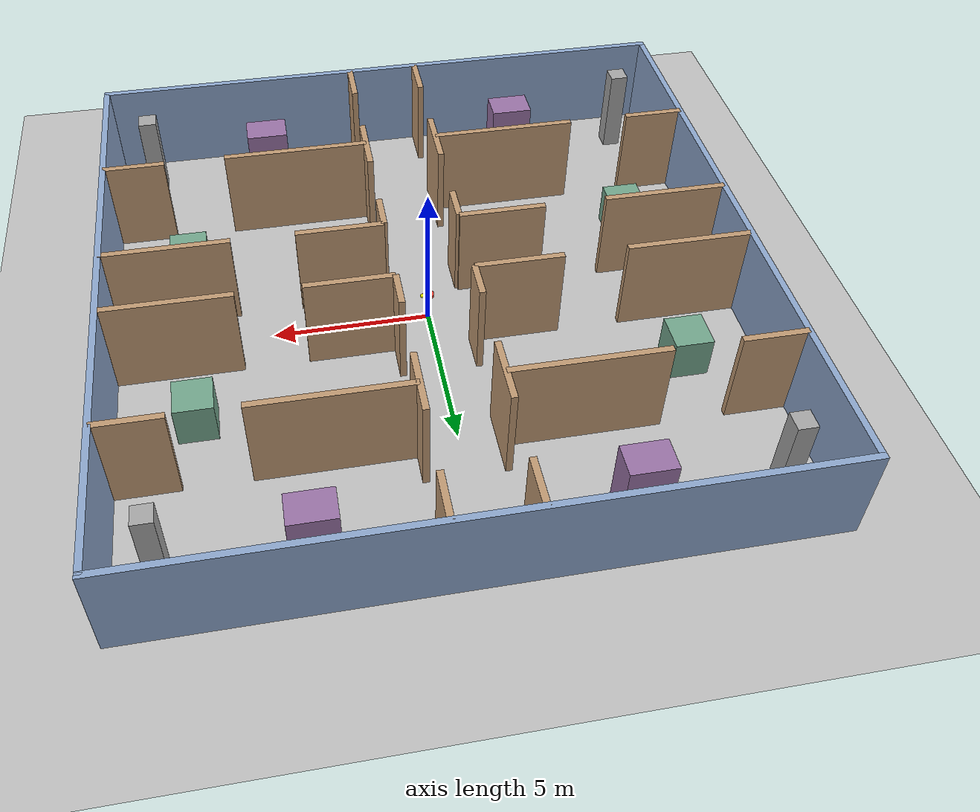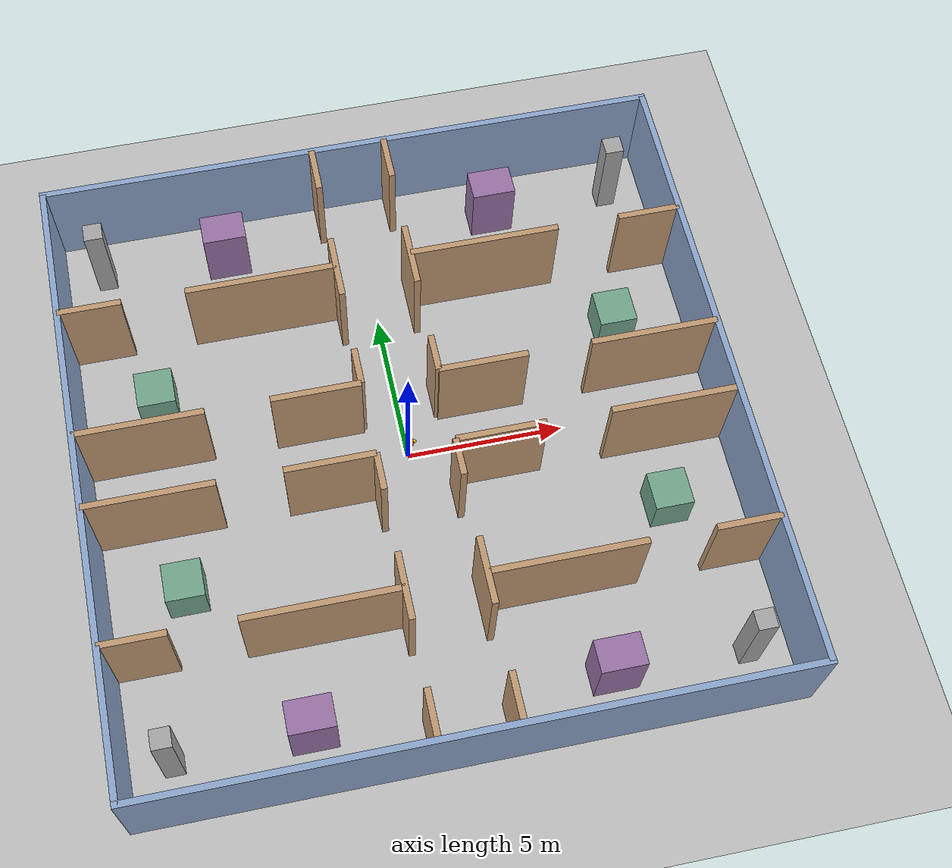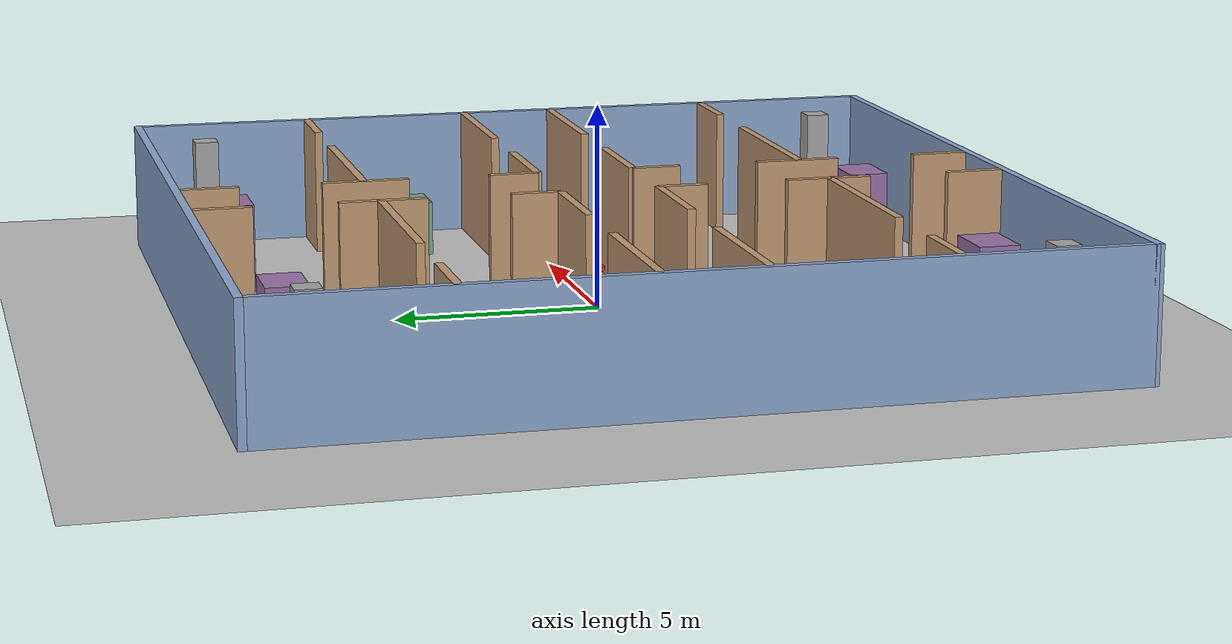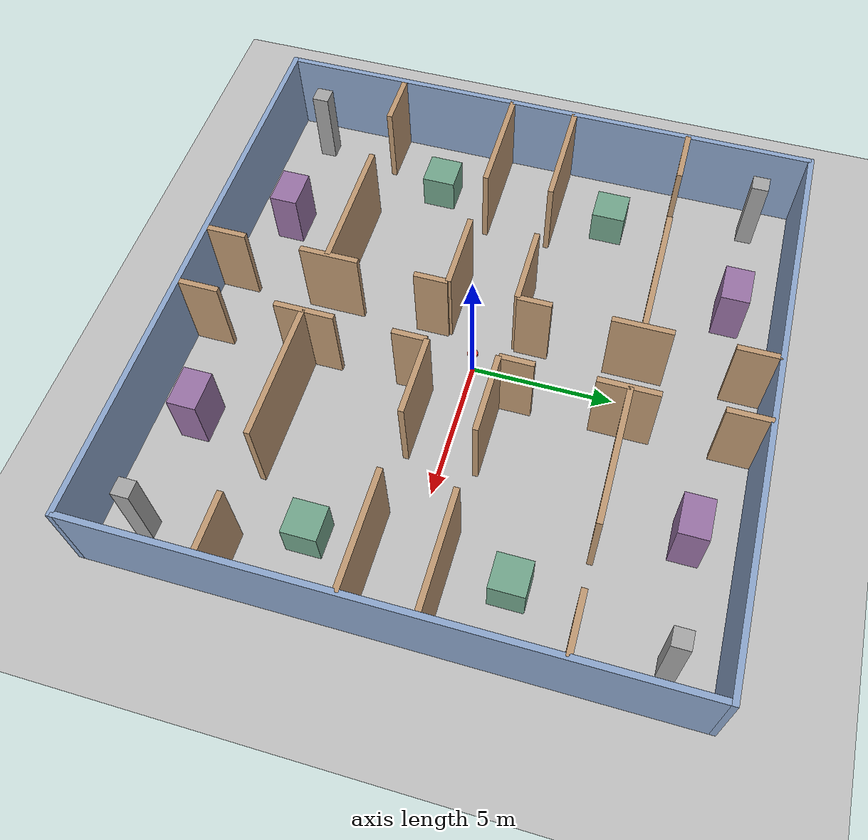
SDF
<?xml version='1.0' encoding='utf-8'?>
<sdf version="1.6">
  <world name="fuel_complex">
    <gravity>0 0 -9.81</gravity>
    <physics type="ode">
      <max_step_size>0.002</max_step_size>
      <real_time_update_rate>500</real_time_update_rate>
    </physics>
    <scene>
      <ambient>0.6 0.6 0.6 1</ambient>
      <background>0.8 0.85 0.9 1</background>
    </scene>
    <light name="sun" type="directional">
      <pose>0 0 10 0 0 0</pose>
      <diffuse>0.8 0.8 0.8 1</diffuse>
      <direction>-0.2 -0.4 -1</direction>
    </light>
    <model name="ground">
      <static>true</static>
      <link name="ground">
        <collision name="collision">
          <geometry>
            <plane>
              <normal>0 0 1</normal>
              <size>30 30</size>
            </plane>
          </geometry>
        </collision>
        <visual name="visual">
          <geometry>
            <plane>
              <normal>0 0 1</normal>
              <size>30 30</size>
            </plane>
          </geometry>
          <material>
            <ambient>0.75 0.75 0.75 1</ambient>
          </material>
        </visual>
      </link>
    </model>
    <model name="fuel_drone">
      <pose>0 0 1 0 0 0</pose>
      <link name="body">
        <inertial>
          <mass>0.98</mass>
          <inertia>
            <ixx>0.015</ixx>
            <iyy>0.015</iyy>
            <izz>0.025</izz>
          </inertia>
        </inertial>
        <collision name="collision">
          <geometry>
            <cylinder>
              <radius>0.18</radius>
              <length>0.10</length>
            </cylinder>
          </geometry>
        </collision>
        <visual name="visual">
          <geometry>
            <cylinder>
              <radius>0.18</radius>
              <length>0.10</length>
            </cylinder>
          </geometry>
          <material>
            <ambient>0.9 0.2 0.15 1</ambient>
          </material>
        </visual>
        <visual name="front">
          <pose>0.2 0 0 0 0 0</pose>
          <geometry>
            <sphere>
              <radius>0.06</radius>
            </sphere>
          </geometry>
          <material>
            <ambient>1 1 0 1</ambient>
          </material>
        </visual>
        <sensor name="front_depth" type="depth">
          <always_on>true</always_on>
          <update_rate>15</update_rate>
          <pose>0 0 0 0 0 0</pose>
          <camera>
            <horizontal_fov>1.3962634</horizontal_fov>
            <image>
              <width>640</width>
              <height>480</height>
              <format>R8G8B8</format>
            </image>
            <clip>
              <near>0.2</near>
              <far>5.0</far>
            </clip>
          </camera>
          <plugin name="depth_ros" filename="libgazebo_ros_depth_camera.so">
            <robotNamespace>/gazebo_fuel</robotNamespace>
            <cameraName>camera</cameraName>
            <depthImageTopicName>depth/image_raw</depthImageTopicName>
            <depthImageCameraInfoTopicName>depth/camera_info</depthImageCameraInfoTopicName>
            <imageTopicName>image_raw</imageTopicName>
            <cameraInfoTopicName>camera_info</cameraInfoTopicName>
            <pointCloudTopicName>points</pointCloudTopicName>
            <frameName>camera_optical</frameName>
            <updateRate>0</updateRate>
            <pointCloudCutoff>0.2</pointCloudCutoff>
          </plugin>
        </sensor>
        <sensor name="front_lidar" type="ray">
          <pose>0 0 0.15 0 0 0</pose>
          <always_on>true</always_on>
          <update_rate>10</update_rate>
          <visualize>false</visualize>
          <ray>
            <scan>
              <horizontal>
                <samples>240</samples>
                <resolution>1</resolution>
                <min_angle>-1.04719755</min_angle>
                <max_angle>1.04719755</max_angle>
              </horizontal>
              <vertical>
                <samples>32</samples>
                <resolution>1</resolution>
                <min_angle>-0.52359878</min_angle>
                <max_angle>0.52359878</max_angle>
              </vertical>
            </scan>
            <range>
              <min>0.2</min>
              <max>8.0</max>
              <resolution>0.01</resolution>
            </range>
          </ray>
          <plugin name="lidar_ros" filename="libgazebo_ros_block_laser.so">
            <robotNamespace>/gazebo_fuel</robotNamespace>
            <topicName>lidar/points_raw</topicName>
            <frameName>lidar_link</frameName>
            <gaussianNoise>0.0</gaussianNoise>
            <hokuyoMinIntensity>0.0</hokuyoMinIntensity>
            <updateRate>0</updateRate>
          </plugin>
        </sensor>
      </link>
      <plugin name="fuel_controller" filename="libfuel_gazebo_controller.so" />
    </model>
    <model name="outer_north">
      <static>true</static>
      <pose>0 10 1.6 0 0 0</pose>
      <link name="body">
        <collision name="collision">
          <geometry>
            <box>
              <size>20.2 0.2 3.2</size>
            </box>
          </geometry>
        </collision>
        <visual name="visual">
          <geometry>
            <box>
              <size>20.2 0.2 3.2</size>
            </box>
          </geometry>
          <material>
            <ambient>0.55 0.65 0.80 1</ambient>
            <diffuse>0.55 0.65 0.80 1</diffuse>
          </material>
        </visual>
      </link>
    </model>
    <model name="outer_south">
      <static>true</static>
      <pose>0 -10 1.6 0 0 0</pose>
      <link name="body">
        <collision name="collision">
          <geometry>
            <box>
              <size>20.2 0.2 3.2</size>
            </box>
          </geometry>
        </collision>
        <visual name="visual">
          <geometry>
            <box>
              <size>20.2 0.2 3.2</size>
            </box>
          </geometry>
          <material>
            <ambient>0.55 0.65 0.80 1</ambient>
            <diffuse>0.55 0.65 0.80 1</diffuse>
          </material>
        </visual>
      </link>
    </model>
    <model name="outer_east">
      <static>true</static>
      <pose>10 0 1.6 0 0 0</pose>
      <link name="body">
        <collision name="collision">
          <geometry>
            <box>
              <size>0.2 20 3.2</size>
            </box>
          </geometry>
        </collision>
        <visual name="visual">
          <geometry>
            <box>
              <size>0.2 20 3.2</size>
            </box>
          </geometry>
          <material>
            <ambient>0.55 0.65 0.80 1</ambient>
            <diffuse>0.55 0.65 0.80 1</diffuse>
          </material>
        </visual>
      </link>
    </model>
    <model name="outer_west">
      <static>true</static>
      <pose>-10 0 1.6 0 0 0</pose>
      <link name="body">
        <collision name="collision">
          <geometry>
            <box>
              <size>0.2 20 3.2</size>
            </box>
          </geometry>
        </collision>
        <visual name="visual">
          <geometry>
            <box>
              <size>0.2 20 3.2</size>
            </box>
          </geometry>
          <material>
            <ambient>0.55 0.65 0.80 1</ambient>
            <diffuse>0.55 0.65 0.80 1</diffuse>
          </material>
        </visual>
      </link>
    </model>
    <model name="corridor_side_-1_-1_0">
      <static>true</static>
      <pose>-1.2 -1.7999999999999998 1.6 0 0 0</pose>
      <link name="body">
        <collision name="collision">
          <geometry>
            <box>
              <size>0.2 1.2 3.2</size>
            </box>
          </geometry>
        </collision>
        <visual name="visual">
          <geometry>
            <box>
              <size>0.2 1.2 3.2</size>
            </box>
          </geometry>
          <material>
            <ambient>0.75 0.60 0.45 1</ambient>
            <diffuse>0.75 0.60 0.45 1</diffuse>
          </material>
        </visual>
      </link>
    </model>
    <model name="corridor_side_-1_-1_1">
      <static>true</static>
      <pose>-1.2 -5.45 1.6 0 0 0</pose>
      <link name="body">
        <collision name="collision">
          <geometry>
            <box>
              <size>0.2 2.0999999999999996 3.2</size>
            </box>
          </geometry>
        </collision>
        <visual name="visual">
          <geometry>
            <box>
              <size>0.2 2.0999999999999996 3.2</size>
            </box>
          </geometry>
          <material>
            <ambient>0.75 0.60 0.45 1</ambient>
            <diffuse>0.75 0.60 0.45 1</diffuse>
          </material>
        </visual>
      </link>
    </model>
    <model name="corridor_side_-1_-1_2">
      <static>true</static>
      <pose>-1.2 -9.25 1.6 0 0 0</pose>
      <link name="body">
        <collision name="collision">
          <geometry>
            <box>
              <size>0.2 1.5 3.2</size>
            </box>
          </geometry>
        </collision>
        <visual name="visual">
          <geometry>
            <box>
              <size>0.2 1.5 3.2</size>
            </box>
          </geometry>
          <material>
            <ambient>0.75 0.60 0.45 1</ambient>
            <diffuse>0.75 0.60 0.45 1</diffuse>
          </material>
        </visual>
      </link>
    </model>
    <model name="cross_side_-1_-1_0">
      <static>true</static>
      <pose>-2.6 -1.2 1.6 0 0 0</pose>
      <link name="body">
        <collision name="collision">
          <geometry>
            <box>
              <size>2.8 0.2 3.2</size>
            </box>
          </geometry>
        </collision>
        <visual name="visual">
          <geometry>
            <box>
              <size>2.8 0.2 3.2</size>
            </box>
          </geometry>
          <material>
            <ambient>0.75 0.60 0.45 1</ambient>
            <diffuse>0.75 0.60 0.45 1</diffuse>
          </material>
        </visual>
      </link>
    </model>
    <model name="cross_side_-1_-1_1">
      <static>true</static>
      <pose>-8.0 -1.2 1.6 0 0 0</pose>
      <link name="body">
        <collision name="collision">
          <geometry>
            <box>
              <size>4 0.2 3.2</size>
            </box>
          </geometry>
        </collision>
        <visual name="visual">
          <geometry>
            <box>
              <size>4 0.2 3.2</size>
            </box>
          </geometry>
          <material>
            <ambient>0.75 0.60 0.45 1</ambient>
            <diffuse>0.75 0.60 0.45 1</diffuse>
          </material>
        </visual>
      </link>
    </model>
    <model name="room_divider_-1_-1_0">
      <static>true</static>
      <pose>-3.6 -5.5 1.6 0 0 0</pose>
      <link name="body">
        <collision name="collision">
          <geometry>
            <box>
              <size>4.8 0.2 3.2</size>
            </box>
          </geometry>
        </collision>
        <visual name="visual">
          <geometry>
            <box>
              <size>4.8 0.2 3.2</size>
            </box>
          </geometry>
          <material>
            <ambient>0.75 0.60 0.45 1</ambient>
            <diffuse>0.75 0.60 0.45 1</diffuse>
          </material>
        </visual>
      </link>
    </model>
    <model name="room_divider_-1_-1_1">
      <static>true</static>
      <pose>-9.0 -5.5 1.6 0 0 0</pose>
      <link name="body">
        <collision name="collision">
          <geometry>
            <box>
              <size>2 0.2 3.2</size>
            </box>
          </geometry>
        </collision>
        <visual name="visual">
          <geometry>
            <box>
              <size>2 0.2 3.2</size>
            </box>
          </geometry>
          <material>
            <ambient>0.75 0.60 0.45 1</ambient>
            <diffuse>0.75 0.60 0.45 1</diffuse>
          </material>
        </visual>
      </link>
    </model>
    <model name="crate_inner_-1_-1">
      <static>true</static>
      <pose>-7.5 -3.3 0.7 0 0 0</pose>
      <link name="body">
        <collision name="collision">
          <geometry>
            <box>
              <size>1.2 1.2 1.4</size>
            </box>
          </geometry>
        </collision>
        <visual name="visual">
          <geometry>
            <box>
              <size>1.2 1.2 1.4</size>
            </box>
          </geometry>
          <material>
            <ambient>0.45 0.65 0.55 1</ambient>
            <diffuse>0.45 0.65 0.55 1</diffuse>
          </material>
        </visual>
      </link>
    </model>
    <model name="crate_outer_-1_-1">
      <static>true</static>
      <pose>-4.5 -8.3 1.1 0 0 0</pose>
      <link name="body">
        <collision name="collision">
          <geometry>
            <box>
              <size>1.4 1.0 2.2</size>
            </box>
          </geometry>
        </collision>
        <visual name="visual">
          <geometry>
            <box>
              <size>1.4 1.0 2.2</size>
            </box>
          </geometry>
          <material>
            <ambient>0.60 0.45 0.65 1</ambient>
            <diffuse>0.60 0.45 0.65 1</diffuse>
          </material>
        </visual>
      </link>
    </model>
    <model name="column_-1_-1">
      <static>true</static>
      <pose>-8.6 -8.4 1.5 0 0 0</pose>
      <link name="body">
        <collision name="collision">
          <geometry>
            <box>
              <size>0.6 0.6 3.0</size>
            </box>
          </geometry>
        </collision>
        <visual name="visual">
          <geometry>
            <box>
              <size>0.6 0.6 3.0</size>
            </box>
          </geometry>
          <material>
            <ambient>0.65 0.65 0.65 1</ambient>
            <diffuse>0.65 0.65 0.65 1</diffuse>
          </material>
        </visual>
      </link>
    </model>
    <model name="corridor_side_-1_1_0">
      <static>true</static>
      <pose>-1.2 1.7999999999999998 1.6 0 0 0</pose>
      <link name="body">
        <collision name="collision">
          <geometry>
            <box>
              <size>0.2 1.2 3.2</size>
            </box>
          </geometry>
        </collision>
        <visual name="visual">
          <geometry>
            <box>
              <size>0.2 1.2 3.2</size>
            </box>
          </geometry>
          <material>
            <ambient>0.75 0.60 0.45 1</ambient>
            <diffuse>0.75 0.60 0.45 1</diffuse>
          </material>
        </visual>
      </link>
    </model>
    <model name="corridor_side_-1_1_1">
      <static>true</static>
      <pose>-1.2 5.45 1.6 0 0 0</pose>
      <link name="body">
        <collision name="collision">
          <geometry>
            <box>
              <size>0.2 2.0999999999999996 3.2</size>
            </box>
          </geometry>
        </collision>
        <visual name="visual">
          <geometry>
            <box>
              <size>0.2 2.0999999999999996 3.2</size>
            </box>
          </geometry>
          <material>
            <ambient>0.75 0.60 0.45 1</ambient>
            <diffuse>0.75 0.60 0.45 1</diffuse>
          </material>
        </visual>
      </link>
    </model>
    <model name="corridor_side_-1_1_2">
      <static>true</static>
      <pose>-1.2 9.25 1.6 0 0 0</pose>
      <link name="body">
        <collision name="collision">
          <geometry>
            <box>
              <size>0.2 1.5 3.2</size>
            </box>
          </geometry>
        </collision>
        <visual name="visual">
          <geometry>
            <box>
              <size>0.2 1.5 3.2</size>
            </box>
          </geometry>
          <material>
            <ambient>0.75 0.60 0.45 1</ambient>
            <diffuse>0.75 0.60 0.45 1</diffuse>
          </material>
        </visual>
      </link>
    </model>
    <model name="cross_side_-1_1_0">
      <static>true</static>
      <pose>-2.6 1.2 1.6 0 0 0</pose>
      <link name="body">
        <collision name="collision">
          <geometry>
            <box>
              <size>2.8 0.2 3.2</size>
            </box>
          </geometry>
        </collision>
        <visual name="visual">
          <geometry>
            <box>
              <size>2.8 0.2 3.2</size>
            </box>
          </geometry>
          <material>
            <ambient>0.75 0.60 0.45 1</ambient>
            <diffuse>0.75 0.60 0.45 1</diffuse>
          </material>
        </visual>
      </link>
    </model>
    <model name="cross_side_-1_1_1">
      <static>true</static>
      <pose>-8.0 1.2 1.6 0 0 0</pose>
      <link name="body">
        <collision name="collision">
          <geometry>
            <box>
              <size>4 0.2 3.2</size>
            </box>
          </geometry>
        </collision>
        <visual name="visual">
          <geometry>
            <box>
              <size>4 0.2 3.2</size>
            </box>
          </geometry>
          <material>
            <ambient>0.75 0.60 0.45 1</ambient>
            <diffuse>0.75 0.60 0.45 1</diffuse>
          </material>
        </visual>
      </link>
    </model>
    <model name="room_divider_-1_1_0">
      <static>true</static>
      <pose>-3.6 5.5 1.6 0 0 0</pose>
      <link name="body">
        <collision name="collision">
          <geometry>
            <box>
              <size>4.8 0.2 3.2</size>
            </box>
          </geometry>
        </collision>
        <visual name="visual">
          <geometry>
            <box>
              <size>4.8 0.2 3.2</size>
            </box>
          </geometry>
          <material>
            <ambient>0.75 0.60 0.45 1</ambient>
            <diffuse>0.75 0.60 0.45 1</diffuse>
          </material>
        </visual>
      </link>
    </model>
    <model name="room_divider_-1_1_1">
      <static>true</static>
      <pose>-9.0 5.5 1.6 0 0 0</pose>
      <link name="body">
        <collision name="collision">
          <geometry>
            <box>
              <size>2 0.2 3.2</size>
            </box>
          </geometry>
        </collision>
        <visual name="visual">
          <geometry>
            <box>
              <size>2 0.2 3.2</size>
            </box>
          </geometry>
          <material>
            <ambient>0.75 0.60 0.45 1</ambient>
            <diffuse>0.75 0.60 0.45 1</diffuse>
          </material>
        </visual>
      </link>
    </model>
    <model name="crate_inner_-1_1">
      <static>true</static>
      <pose>-7.5 3.3 0.7 0 0 0</pose>
      <link name="body">
        <collision name="collision">
          <geometry>
            <box>
              <size>1.2 1.2 1.4</size>
            </box>
          </geometry>
        </collision>
        <visual name="visual">
          <geometry>
            <box>
              <size>1.2 1.2 1.4</size>
            </box>
          </geometry>
          <material>
            <ambient>0.45 0.65 0.55 1</ambient>
            <diffuse>0.45 0.65 0.55 1</diffuse>
          </material>
        </visual>
      </link>
    </model>
    <model name="crate_outer_-1_1">
      <static>true</static>
      <pose>-4.5 8.3 1.1 0 0 0</pose>
      <link name="body">
        <collision name="collision">
          <geometry>
            <box>
              <size>1.4 1.0 2.2</size>
            </box>
          </geometry>
        </collision>
        <visual name="visual">
          <geometry>
            <box>
              <size>1.4 1.0 2.2</size>
            </box>
          </geometry>
          <material>
            <ambient>0.60 0.45 0.65 1</ambient>
            <diffuse>0.60 0.45 0.65 1</diffuse>
          </material>
        </visual>
      </link>
    </model>
    <model name="column_-1_1">
      <static>true</static>
      <pose>-8.6 8.4 1.5 0 0 0</pose>
      <link name="body">
        <collision name="collision">
          <geometry>
            <box>
              <size>0.6 0.6 3.0</size>
            </box>
          </geometry>
        </collision>
        <visual name="visual">
          <geometry>
            <box>
              <size>0.6 0.6 3.0</size>
            </box>
          </geometry>
          <material>
            <ambient>0.65 0.65 0.65 1</ambient>
            <diffuse>0.65 0.65 0.65 1</diffuse>
          </material>
        </visual>
      </link>
    </model>
    <model name="corridor_side_1_-1_0">
      <static>true</static>
      <pose>1.2 -1.7999999999999998 1.6 0 0 0</pose>
      <link name="body">
        <collision name="collision">
          <geometry>
            <box>
              <size>0.2 1.2 3.2</size>
            </box>
          </geometry>
        </collision>
        <visual name="visual">
          <geometry>
            <box>
              <size>0.2 1.2 3.2</size>
            </box>
          </geometry>
          <material>
            <ambient>0.75 0.60 0.45 1</ambient>
            <diffuse>0.75 0.60 0.45 1</diffuse>
          </material>
        </visual>
      </link>
    </model>
    <model name="corridor_side_1_-1_1">
      <static>true</static>
      <pose>1.2 -5.45 1.6 0 0 0</pose>
      <link name="body">
        <collision name="collision">
          <geometry>
            <box>
              <size>0.2 2.0999999999999996 3.2</size>
            </box>
          </geometry>
        </collision>
        <visual name="visual">
          <geometry>
            <box>
              <size>0.2 2.0999999999999996 3.2</size>
            </box>
          </geometry>
          <material>
            <ambient>0.75 0.60 0.45 1</ambient>
            <diffuse>0.75 0.60 0.45 1</diffuse>
          </material>
        </visual>
      </link>
    </model>
    <model name="corridor_side_1_-1_2">
      <static>true</static>
      <pose>1.2 -9.25 1.6 0 0 0</pose>
      <link name="body">
        <collision name="collision">
          <geometry>
            <box>
              <size>0.2 1.5 3.2</size>
            </box>
          </geometry>
        </collision>
        <visual name="visual">
          <geometry>
            <box>
              <size>0.2 1.5 3.2</size>
            </box>
          </geometry>
          <material>
            <ambient>0.75 0.60 0.45 1</ambient>
            <diffuse>0.75 0.60 0.45 1</diffuse>
          </material>
        </visual>
      </link>
    </model>
    <model name="cross_side_1_-1_0">
      <static>true</static>
      <pose>2.6 -1.2 1.6 0 0 0</pose>
      <link name="body">
        <collision name="collision">
          <geometry>
            <box>
              <size>2.8 0.2 3.2</size>
            </box>
          </geometry>
        </collision>
        <visual name="visual">
          <geometry>
            <box>
              <size>2.8 0.2 3.2</size>
            </box>
          </geometry>
          <material>
            <ambient>0.75 0.60 0.45 1</ambient>
            <diffuse>0.75 0.60 0.45 1</diffuse>
          </material>
        </visual>
      </link>
    </model>
    <model name="cross_side_1_-1_1">
      <static>true</static>
      <pose>8.0 -1.2 1.6 0 0 0</pose>
      <link name="body">
        <collision name="collision">
          <geometry>
            <box>
              <size>4 0.2 3.2</size>
            </box>
          </geometry>
        </collision>
        <visual name="visual">
          <geometry>
            <box>
              <size>4 0.2 3.2</size>
            </box>
          </geometry>
          <material>
            <ambient>0.75 0.60 0.45 1</ambient>
            <diffuse>0.75 0.60 0.45 1</diffuse>
          </material>
        </visual>
      </link>
    </model>
    <model name="room_divider_1_-1_0">
      <static>true</static>
      <pose>3.6 -5.5 1.6 0 0 0</pose>
      <link name="body">
        <collision name="collision">
          <geometry>
            <box>
              <size>4.8 0.2 3.2</size>
            </box>
          </geometry>
        </collision>
        <visual name="visual">
          <geometry>
            <box>
              <size>4.8 0.2 3.2</size>
            </box>
          </geometry>
          <material>
            <ambient>0.75 0.60 0.45 1</ambient>
            <diffuse>0.75 0.60 0.45 1</diffuse>
          </material>
        </visual>
      </link>
    </model>
    <model name="room_divider_1_-1_1">
      <static>true</static>
      <pose>9.0 -5.5 1.6 0 0 0</pose>
      <link name="body">
        <collision name="collision">
          <geometry>
            <box>
              <size>2 0.2 3.2</size>
            </box>
          </geometry>
        </collision>
        <visual name="visual">
          <geometry>
            <box>
              <size>2 0.2 3.2</size>
            </box>
          </geometry>
          <material>
            <ambient>0.75 0.60 0.45 1</ambient>
            <diffuse>0.75 0.60 0.45 1</diffuse>
          </material>
        </visual>
      </link>
    </model>
    <model name="crate_inner_1_-1">
      <static>true</static>
      <pose>7.5 -3.3 0.7 0 0 0</pose>
      <link name="body">
        <collision name="collision">
          <geometry>
            <box>
              <size>1.2 1.2 1.4</size>
            </box>
          </geometry>
        </collision>
        <visual name="visual">
          <geometry>
            <box>
              <size>1.2 1.2 1.4</size>
            </box>
          </geometry>
          <material>
            <ambient>0.45 0.65 0.55 1</ambient>
            <diffuse>0.45 0.65 0.55 1</diffuse>
          </material>
        </visual>
      </link>
    </model>
    <model name="crate_outer_1_-1">
      <static>true</static>
      <pose>4.5 -8.3 1.1 0 0 0</pose>
      <link name="body">
        <collision name="collision">
          <geometry>
            <box>
              <size>1.4 1.0 2.2</size>
            </box>
          </geometry>
        </collision>
        <visual name="visual">
          <geometry>
            <box>
              <size>1.4 1.0 2.2</size>
            </box>
          </geometry>
          <material>
            <ambient>0.60 0.45 0.65 1</ambient>
            <diffuse>0.60 0.45 0.65 1</diffuse>
          </material>
        </visual>
      </link>
    </model>
    <model name="column_1_-1">
      <static>true</static>
      <pose>8.6 -8.4 1.5 0 0 0</pose>
      <link name="body">
        <collision name="collision">
          <geometry>
            <box>
              <size>0.6 0.6 3.0</size>
            </box>
          </geometry>
        </collision>
        <visual name="visual">
          <geometry>
            <box>
              <size>0.6 0.6 3.0</size>
            </box>
          </geometry>
          <material>
            <ambient>0.65 0.65 0.65 1</ambient>
            <diffuse>0.65 0.65 0.65 1</diffuse>
          </material>
        </visual>
      </link>
    </model>
    <model name="corridor_side_1_1_0">
      <static>true</static>
      <pose>1.2 1.7999999999999998 1.6 0 0 0</pose>
      <link name="body">
        <collision name="collision">
          <geometry>
            <box>
              <size>0.2 1.2 3.2</size>
            </box>
          </geometry>
        </collision>
        <visual name="visual">
          <geometry>
            <box>
              <size>0.2 1.2 3.2</size>
            </box>
          </geometry>
          <material>
            <ambient>0.75 0.60 0.45 1</ambient>
            <diffuse>0.75 0.60 0.45 1</diffuse>
          </material>
        </visual>
      </link>
    </model>
    <model name="corridor_side_1_1_1">
      <static>true</static>
      <pose>1.2 5.45 1.6 0 0 0</pose>
      <link name="body">
        <collision name="collision">
          <geometry>
            <box>
              <size>0.2 2.0999999999999996 3.2</size>
            </box>
          </geometry>
        </collision>
        <visual name="visual">
          <geometry>
            <box>
              <size>0.2 2.0999999999999996 3.2</size>
            </box>
          </geometry>
          <material>
            <ambient>0.75 0.60 0.45 1</ambient>
            <diffuse>0.75 0.60 0.45 1</diffuse>
          </material>
        </visual>
      </link>
    </model>
    <model name="corridor_side_1_1_2">
      <static>true</static>
      <pose>1.2 9.25 1.6 0 0 0</pose>
      <link name="body">
        <collision name="collision">
          <geometry>
            <box>
              <size>0.2 1.5 3.2</size>
            </box>
          </geometry>
        </collision>
        <visual name="visual">
          <geometry>
            <box>
              <size>0.2 1.5 3.2</size>
            </box>
          </geometry>
          <material>
            <ambient>0.75 0.60 0.45 1</ambient>
            <diffuse>0.75 0.60 0.45 1</diffuse>
          </material>
        </visual>
      </link>
    </model>
    <model name="cross_side_1_1_0">
      <static>true</static>
      <pose>2.6 1.2 1.6 0 0 0</pose>
      <link name="body">
        <collision name="collision">
          <geometry>
            <box>
              <size>2.8 0.2 3.2</size>
            </box>
          </geometry>
        </collision>
        <visual name="visual">
          <geometry>
            <box>
              <size>2.8 0.2 3.2</size>
            </box>
          </geometry>
          <material>
            <ambient>0.75 0.60 0.45 1</ambient>
            <diffuse>0.75 0.60 0.45 1</diffuse>
          </material>
        </visual>
      </link>
    </model>
    <model name="cross_side_1_1_1">
      <static>true</static>
      <pose>8.0 1.2 1.6 0 0 0</pose>
      <link name="body">
        <collision name="collision">
          <geometry>
            <box>
              <size>4 0.2 3.2</size>
            </box>
          </geometry>
        </collision>
        <visual name="visual">
          <geometry>
            <box>
              <size>4 0.2 3.2</size>
            </box>
          </geometry>
          <material>
            <ambient>0.75 0.60 0.45 1</ambient>
            <diffuse>0.75 0.60 0.45 1</diffuse>
          </material>
        </visual>
      </link>
    </model>
    <model name="room_divider_1_1_0">
      <static>true</static>
      <pose>3.6 5.5 1.6 0 0 0</pose>
      <link name="body">
        <collision name="collision">
          <geometry>
            <box>
              <size>4.8 0.2 3.2</size>
            </box>
          </geometry>
        </collision>
        <visual name="visual">
          <geometry>
            <box>
              <size>4.8 0.2 3.2</size>
            </box>
          </geometry>
          <material>
            <ambient>0.75 0.60 0.45 1</ambient>
            <diffuse>0.75 0.60 0.45 1</diffuse>
          </material>
        </visual>
      </link>
    </model>
    <model name="room_divider_1_1_1">
      <static>true</static>
      <pose>9.0 5.5 1.6 0 0 0</pose>
      <link name="body">
        <collision name="collision">
          <geometry>
            <box>
              <size>2 0.2 3.2</size>
            </box>
          </geometry>
        </collision>
        <visual name="visual">
          <geometry>
            <box>
              <size>2 0.2 3.2</size>
            </box>
          </geometry>
          <material>
            <ambient>0.75 0.60 0.45 1</ambient>
            <diffuse>0.75 0.60 0.45 1</diffuse>
          </material>
        </visual>
      </link>
    </model>
    <model name="crate_inner_1_1">
      <static>true</static>
      <pose>7.5 3.3 0.7 0 0 0</pose>
      <link name="body">
        <collision name="collision">
          <geometry>
            <box>
              <size>1.2 1.2 1.4</size>
            </box>
          </geometry>
        </collision>
        <visual name="visual">
          <geometry>
            <box>
              <size>1.2 1.2 1.4</size>
            </box>
          </geometry>
          <material>
            <ambient>0.45 0.65 0.55 1</ambient>
            <diffuse>0.45 0.65 0.55 1</diffuse>
          </material>
        </visual>
      </link>
    </model>
    <model name="crate_outer_1_1">
      <static>true</static>
      <pose>4.5 8.3 1.1 0 0 0</pose>
      <link name="body">
        <collision name="collision">
          <geometry>
            <box>
              <size>1.4 1.0 2.2</size>
            </box>
          </geometry>
        </collision>
        <visual name="visual">
          <geometry>
            <box>
              <size>1.4 1.0 2.2</size>
            </box>
          </geometry>
          <material>
            <ambient>0.60 0.45 0.65 1</ambient>
            <diffuse>0.60 0.45 0.65 1</diffuse>
          </material>
        </visual>
      </link>
    </model>
    <model name="column_1_1">
      <static>true</static>
      <pose>8.6 8.4 1.5 0 0 0</pose>
      <link name="body">
        <collision name="collision">
          <geometry>
            <box>
              <size>0.6 0.6 3.0</size>
            </box>
          </geometry>
        </collision>
        <visual name="visual">
          <geometry>
            <box>
              <size>0.6 0.6 3.0</size>
            </box>
          </geometry>
          <material>
            <ambient>0.65 0.65 0.65 1</ambient>
            <diffuse>0.65 0.65 0.65 1</diffuse>
          </material>
        </visual>
      </link>
    </model>
    <gui fullscreen="0">
      <camera name="overview">
        <pose>22 -22 24 0 0.65 2.35619449</pose>
        <view_controller>orbit</view_controller>
      </camera>
    </gui>
  </world>
</sdf>
